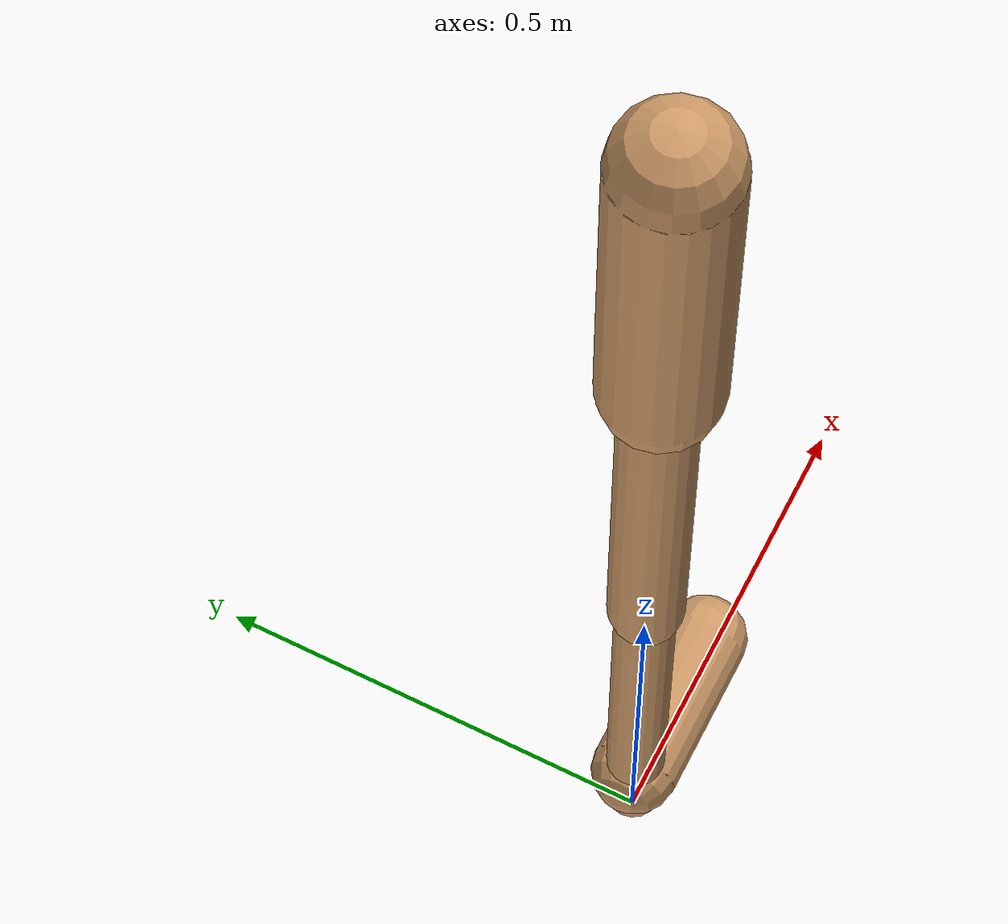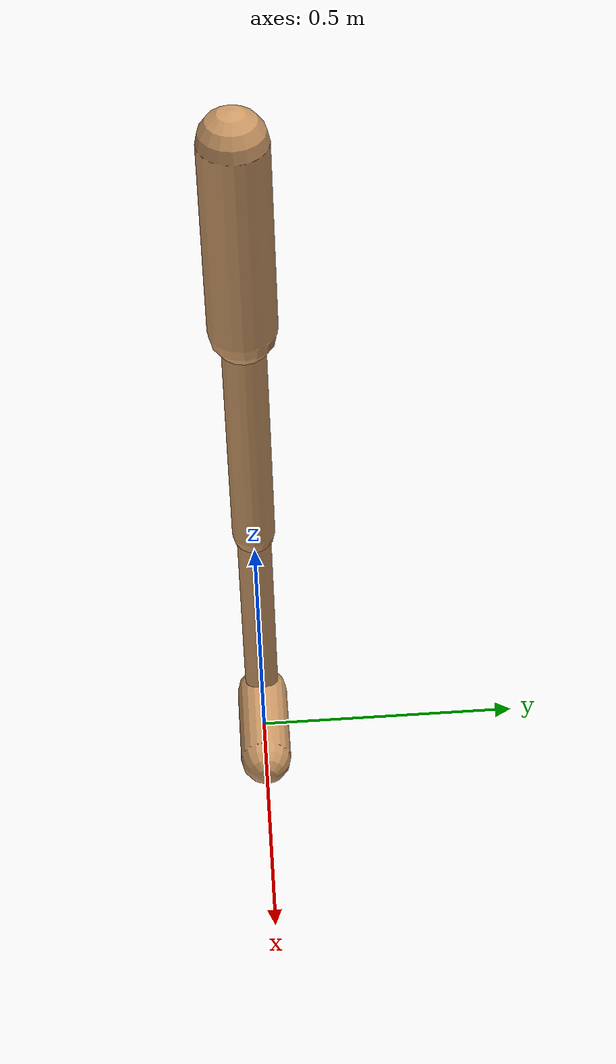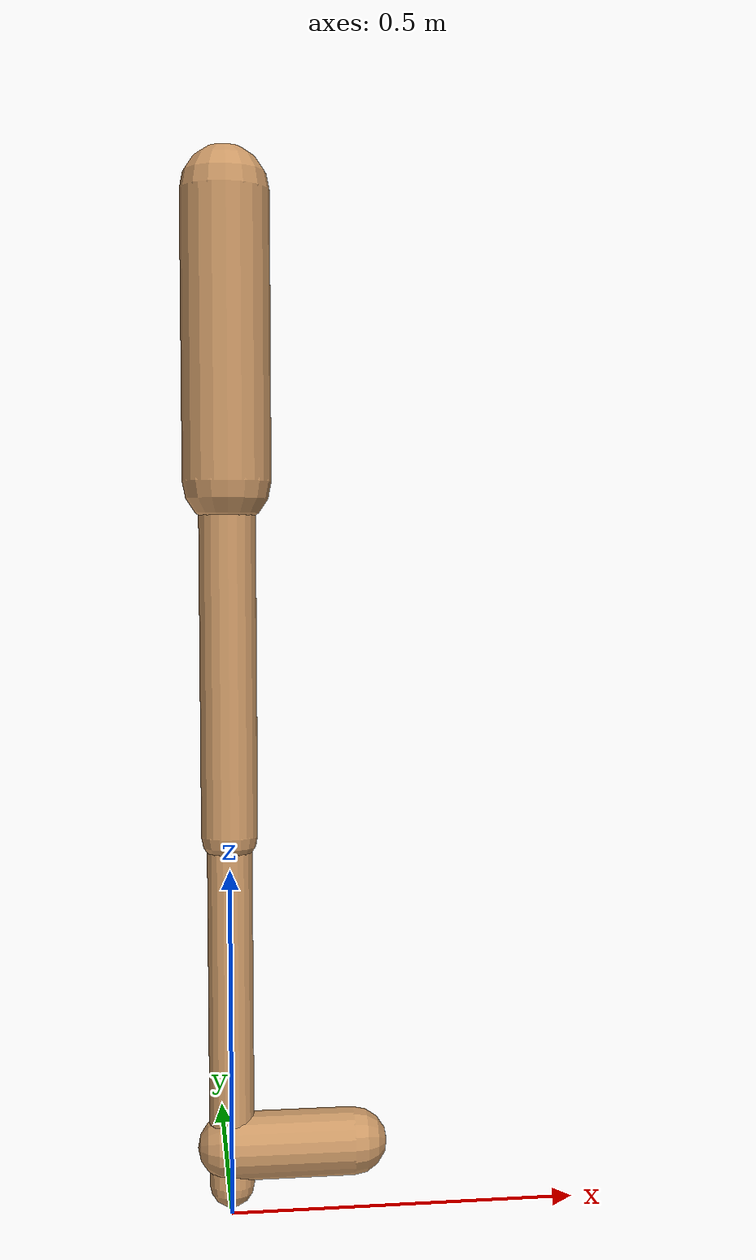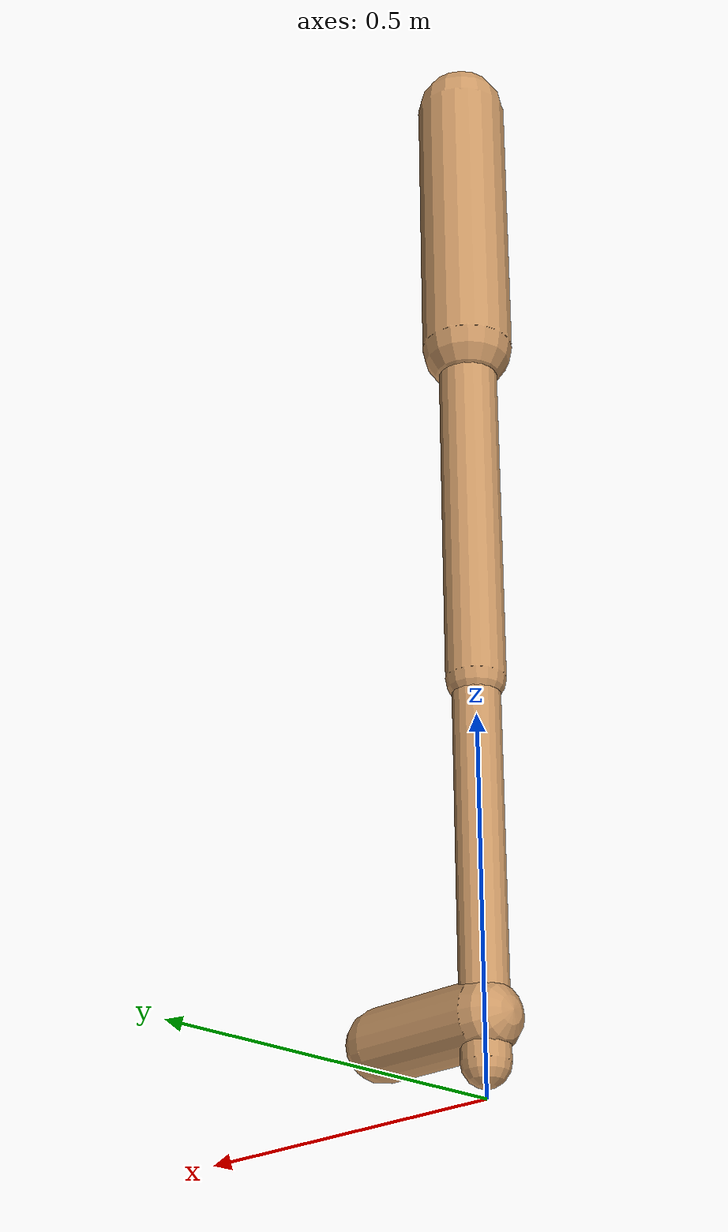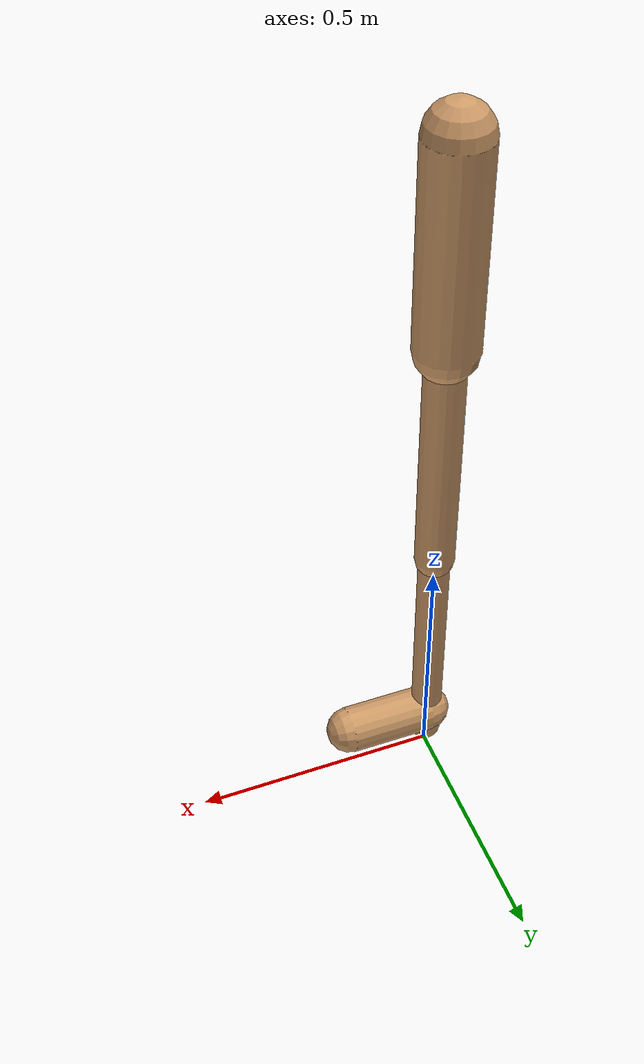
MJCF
<mujoco model="walker2d">
  <compiler angle="degree" coordinate="global" inertiafromgeom="true" />
  <default>
    <joint armature="0.01" damping=".1" limited="true" />
    <geom conaffinity="0" condim="3" contype="1" density="1000" friction="0.8 .1 .1" rgba="0.8 0.6 .4 1" />
  </default>
  <option integrator="RK4" timestep="0.002" />
  <worldbody>

    <body name="torso" pos="0 0 0.10567259535523714">
      <joint armature="0" axis="1 0 0" damping="0" limited="false" name="ignorex" pos="0 0 0" stiffness="0" type="slide" />
      <joint armature="0" axis="0 0 1" damping="0" limited="false" name="ignorez" pos="0 0 0" ref="1.25" stiffness="0" type="slide" />
      <joint armature="0" axis="0 1 0" damping="0" limited="false" name="ignorey" pos="0 0 0" stiffness="0" type="hinge" />
      <geom fromto="0 0 1.45 0 0 1.05" name="torso_geom" size="0.06202295614775667" type="capsule" />
      <body name="thigh">
        <joint axis="0 -1 0" name="thigh_joint" pos="0 0 1.05" range="-150 0" type="hinge" />
        <geom fromto="0.0 0.0 1.05 0.0 0.0 0.5499445600948877" name="thigh_geom" size="0.03988459805629641" type="capsule" />
        <body name="leg" pos="0.0 0.0 -0.0500554399051123">
          <joint axis="0 -1 0" name="leg_joint" pos="0 0 0.6" range="-150 0" type="hinge" />
          <geom fromto="0.0 0.0 0.6 0.0 0.0 0.0443828445498752" name="leg_geom" size="0.03190767844503713" type="capsule" />
          <body name="foot" pos="0.0 0.0 -0.05561715545012481">
            <joint axis="0 -1 0" name="foot_joint" pos="0 0 0.1" range="-45 45" type="hinge" />
            <geom fromto="0.0 0.0 0.1 0.17531202159963188 0.0 0.1" name="foot_geom" size="0.04822706391797706" type="capsule" />
          </body>
        </body>
      </body>

      <body name="thigh_left">
        <joint axis="0 -1 0" name="thigh_left_joint" pos="0 0 1.05" range="-150 0" type="hinge" />
        <geom fromto="0.0 0.0 1.05 0.0 0.0 0.5499445600948877" name="thigh_left_geom" rgba=".7 .3 .6 1" size="0.03988459805629641" type="capsule" />
        <body name="leg_left" pos="0.0 0.0 -0.0500554399051123">
          <joint axis="0 -1 0" name="leg_left_joint" pos="0 0 0.6" range="-150 0" type="hinge" />
          <geom fromto="0.0 0.0 0.6 0.0 0.0 0.0443828445498752" name="leg_left_geom" rgba=".7 .3 .6 1" size="0.03190767844503713" type="capsule" />
          <body name="foot_left" pos="0.0 0.0 -0.05561715545012481">
            <joint axis="0 -1 0" name="foot_left_joint" pos="0 0 0.1" range="-45 45" type="hinge" />
            <geom fromto="0.0 0.0 0.1 0.17531202159963188 0.0 0.1" name="foot_left_geom" rgba=".7 .3 .6 1" size="0.04822706391797706" type="capsule" />
          </body>
        </body>
      </body>
    </body>
  </worldbody>
  <actuator>

    <motor ctrllimited="true" ctrlrange="-1.0 1.0" gear="100" joint="thigh_joint" />
    <motor ctrllimited="true" ctrlrange="-1.0 1.0" gear="100" joint="leg_joint" />
    <motor ctrllimited="true" ctrlrange="-1.0 1.0" gear="100" joint="foot_joint" />
    <motor ctrllimited="true" ctrlrange="-1.0 1.0" gear="100" joint="thigh_left_joint" />
    <motor ctrllimited="true" ctrlrange="-1.0 1.0" gear="100" joint="leg_left_joint" />
    <motor ctrllimited="true" ctrlrange="-1.0 1.0" gear="100" joint="foot_left_joint" />

  </actuator>
</mujoco>
